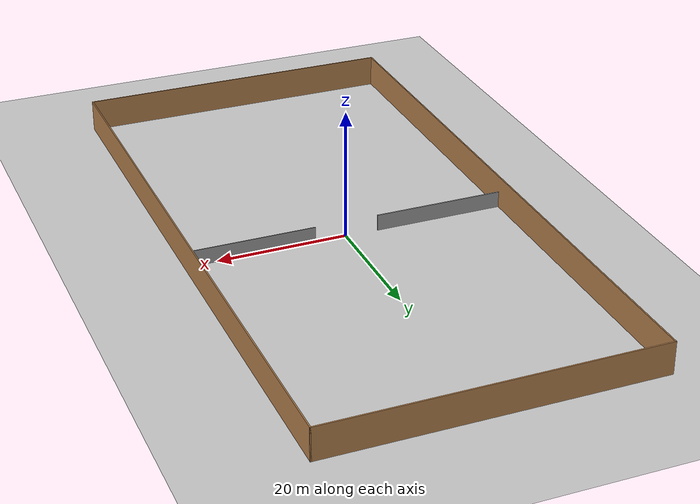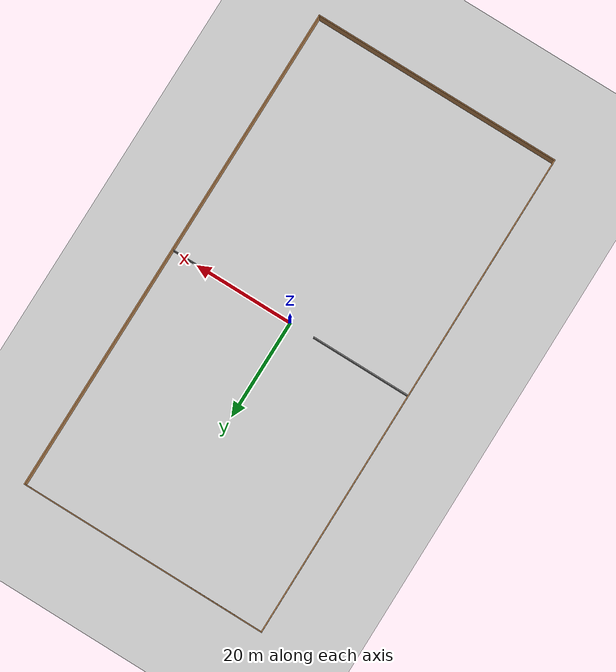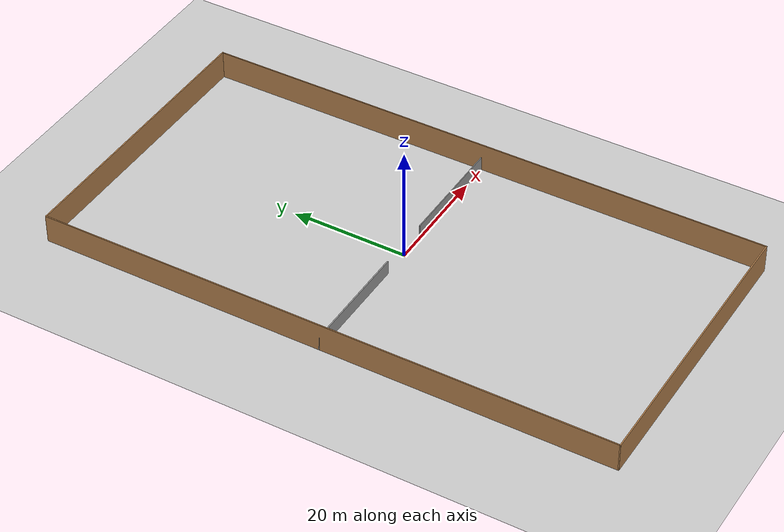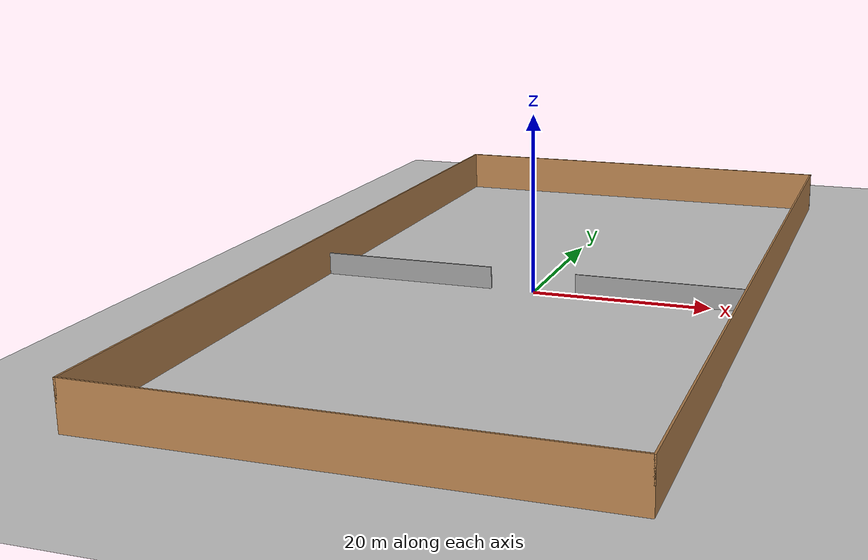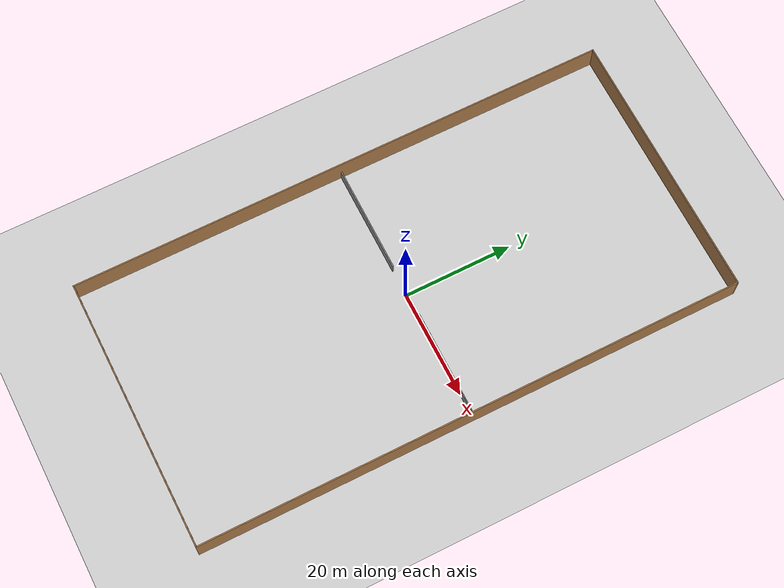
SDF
<sdf version="1.6">
 <world name="default">
  <model name="ground_plane">
   <static>1</static>
   <link name="link">
    <collision name="collision">
     <geometry><plane><normal>0 0 1</normal><size>100 100</size></plane></geometry>
     <surface>
      <contact><collide_bitmask>65535</collide_bitmask></contact>
      <friction><ode><mu>100</mu><mu2>50</mu2></ode></friction>
     </surface>
    </collision>
    <visual name="visual">
     <cast_shadows>0</cast_shadows>
     <geometry><plane><normal>0 0 1</normal><size>100 100</size></plane></geometry>
     <material>
      <script><uri>file://media/materials/scripts/gazebo.material</uri><name>Gazebo/Grey</name></script>
     </material>
    </visual>
   </link>
  </model>
  <model name="walls">
   <link name="Wall_2">
    <pose>0 -50 0 0 -0 0</pose>
    <visual name="Wall_2_Visual">
     <pose>0 0 2.5 0 -0 0</pose>
     <geometry><box><size>50.2 0.2 5</size></box></geometry>
     <material>
      <script><uri>file://media/materials/scripts/gazebo.material</uri><name>Gazebo/Wood</name></script>
      <ambient>1 0.764706 0.305882 1</ambient>
     </material>
     <meta><layer>0</layer></meta>
    </visual>
    <collision name="Wall_2_Collision">
     <pose>0 0 2.5 0 -0 0</pose>
     <geometry><box><size>50.2 0.2 5</size></box></geometry>
     <surface>
      <friction>
       <ode><mu>1</mu><mu2>1</mu2><fdir1>0 0 0</fdir1><slip1>0</slip1><slip2>0</slip2></ode>
       <torsional>
        <coefficient>1</coefficient>
        <patch_radius>0</patch_radius>
        <surface_radius>0</surface_radius>
        <use_patch_radius>1</use_patch_radius>
        <ode><slip>0</slip></ode>
       </torsional>
      </friction>
      <bounce><restitution_coefficient>0</restitution_coefficient><threshold>1e+06</threshold></bounce>
      <contact>
       <collide_without_contact>0</collide_without_contact>
       <collide_without_contact_bitmask>1</collide_without_contact_bitmask>
       <collide_bitmask>1</collide_bitmask>
       <ode>
        <soft_cfm>0</soft_cfm>
        <soft_erp>0.2</soft_erp>
        <kp>1e+13</kp>
        <kd>1</kd>
        <max_vel>0.01</max_vel>
        <min_depth>0</min_depth>
       </ode>
       <bullet>
        <split_impulse>1</split_impulse>
        <split_impulse_penetration_threshold>-0.01</split_impulse_penetration_threshold>
        <soft_cfm>0</soft_cfm>
        <soft_erp>0.2</soft_erp>
        <kp>1e+13</kp>
        <kd>1</kd>
       </bullet>
      </contact>
     </surface>
    </collision>
   </link>
   <link name="Wall_20">
    <pose>25 0 0 0 -0 1.5708</pose>
    <visual name="Wall_20_Visual">
     <pose>0 0 2.5 0 -0 0</pose>
     <geometry><box><size>100.2 0.2 5</size></box></geometry>
     <material>
      <script><uri>file://media/materials/scripts/gazebo.material</uri><name>Gazebo/Wood</name></script>
      <ambient>1 0.764706 0.305882 1</ambient>
     </material>
     <meta><layer>0</layer></meta>
    </visual>
    <collision name="Wall_20_Collision">
     <pose>0 0 2.5 0 -0 0</pose>
     <geometry><box><size>100.2 0.2 5</size></box></geometry>
     <surface>
      <friction>
       <ode><mu>1</mu><mu2>1</mu2><fdir1>0 0 0</fdir1><slip1>0</slip1><slip2>0</slip2></ode>
       <torsional>
        <coefficient>1</coefficient>
        <patch_radius>0</patch_radius>
        <surface_radius>0</surface_radius>
        <use_patch_radius>1</use_patch_radius>
        <ode><slip>0</slip></ode>
       </torsional>
      </friction>
      <bounce><restitution_coefficient>0</restitution_coefficient><threshold>1e+06</threshold></bounce>
      <contact>
       <collide_without_contact>0</collide_without_contact>
       <collide_without_contact_bitmask>1</collide_without_contact_bitmask>
       <collide_bitmask>1</collide_bitmask>
       <ode>
        <soft_cfm>0</soft_cfm>
        <soft_erp>0.2</soft_erp>
        <kp>1e+13</kp>
        <kd>1</kd>
        <max_vel>0.01</max_vel>
        <min_depth>0</min_depth>
       </ode>
       <bullet>
        <split_impulse>1</split_impulse>
        <split_impulse_penetration_threshold>-0.01</split_impulse_penetration_threshold>
        <soft_cfm>0</soft_cfm>
        <soft_erp>0.2</soft_erp>
        <kp>1e+13</kp>
        <kd>1</kd>
       </bullet>
      </contact>
     </surface>
    </collision>
   </link>
   <link name="Wall_22">
    <pose>0 50 0 0 -0 0</pose>
    <visual name="Wall_22_Visual">
     <pose>0 0 2.5 0 -0 0</pose>
     <geometry><box><size>50.2 0.2 5</size></box></geometry>
     <material>
      <script><uri>file://media/materials/scripts/gazebo.material</uri><name>Gazebo/Wood</name></script>
      <ambient>1 0.764706 0.305882 1</ambient>
     </material>
     <meta><layer>0</layer></meta>
    </visual>
    <collision name="Wall_22_Collision">
     <pose>0 0 2.5 0 -0 0</pose>
     <geometry><box><size>50.2 0.2 5</size></box></geometry>
     <surface>
      <friction>
       <ode><mu>1</mu><mu2>1</mu2><fdir1>0 0 0</fdir1><slip1>0</slip1><slip2>0</slip2></ode>
       <torsional>
        <coefficient>1</coefficient>
        <patch_radius>0</patch_radius>
        <surface_radius>0</surface_radius>
        <use_patch_radius>1</use_patch_radius>
        <ode><slip>0</slip></ode>
       </torsional>
      </friction>
      <bounce><restitution_coefficient>0</restitution_coefficient><threshold>1e+06</threshold></bounce>
      <contact>
       <collide_without_contact>0</collide_without_contact>
       <collide_without_contact_bitmask>1</collide_without_contact_bitmask>
       <collide_bitmask>1</collide_bitmask>
       <ode>
        <soft_cfm>0</soft_cfm>
        <soft_erp>0.2</soft_erp>
        <kp>1e+13</kp>
        <kd>1</kd>
        <max_vel>0.01</max_vel>
        <min_depth>0</min_depth>
       </ode>
       <bullet>
        <split_impulse>1</split_impulse>
        <split_impulse_penetration_threshold>-0.01</split_impulse_penetration_threshold>
        <soft_cfm>0</soft_cfm>
        <soft_erp>0.2</soft_erp>
        <kp>1e+13</kp>
        <kd>1</kd>
       </bullet>
      </contact>
     </surface>
    </collision>
   </link>
   <link name="Wall_28">
    <pose>-15 0 0 0 -0 0</pose>
    <visual name="Wall_28_Visual">
     <pose>0 0 1.25 0 -0 0</pose>
     <geometry><box><size>20.2 0.2 2.5</size></box></geometry>
     <material>
      <script><uri>file://media/materials/scripts/gazebo.material</uri><name>Gazebo/Grey</name></script>
      <ambient>1 1 1 1</ambient>
     </material>
     <meta><layer>0</layer></meta>
    </visual>
    <collision name="Wall_28_Collision">
     <pose>0 0 1.25 0 -0 0</pose>
     <geometry><box><size>20.2 0.2 2.5</size></box></geometry>
     <surface>
      <friction>
       <ode><mu>1</mu><mu2>1</mu2><fdir1>0 0 0</fdir1><slip1>0</slip1><slip2>0</slip2></ode>
       <torsional>
        <coefficient>1</coefficient>
        <patch_radius>0</patch_radius>
        <surface_radius>0</surface_radius>
        <use_patch_radius>1</use_patch_radius>
        <ode><slip>0</slip></ode>
       </torsional>
      </friction>
      <bounce><restitution_coefficient>0</restitution_coefficient><threshold>1e+06</threshold></bounce>
      <contact>
       <collide_without_contact>0</collide_without_contact>
       <collide_without_contact_bitmask>1</collide_without_contact_bitmask>
       <collide_bitmask>1</collide_bitmask>
       <ode>
        <soft_cfm>0</soft_cfm>
        <soft_erp>0.2</soft_erp>
        <kp>1e+13</kp>
        <kd>1</kd>
        <max_vel>0.01</max_vel>
        <min_depth>0</min_depth>
       </ode>
       <bullet>
        <split_impulse>1</split_impulse>
        <split_impulse_penetration_threshold>-0.01</split_impulse_penetration_threshold>
        <soft_cfm>0</soft_cfm>
        <soft_erp>0.2</soft_erp>
        <kp>1e+13</kp>
        <kd>1</kd>
       </bullet>
      </contact>
     </surface>
    </collision>
   </link>
   <link name="Wall_30">
    <pose>15 0 0 0 -0 3.14159</pose>
    <visual name="Wall_30_Visual">
     <pose>0 0 1.25 0 -0 0</pose>
     <geometry><box><size>20.15 0.15 2.5</size></box></geometry>
     <material>
      <script><uri>file://media/materials/scripts/gazebo.material</uri><name>Gazebo/Grey</name></script>
      <ambient>1 1 1 1</ambient>
     </material>
     <meta><layer>0</layer></meta>
    </visual>
    <collision name="Wall_30_Collision">
     <pose>0 0 1.25 0 -0 0</pose>
     <geometry><box><size>20.15 0.15 2.5</size></box></geometry>
     <surface>
      <friction>
       <ode><mu>1</mu><mu2>1</mu2><fdir1>0 0 0</fdir1><slip1>0</slip1><slip2>0</slip2></ode>
       <torsional>
        <coefficient>1</coefficient>
        <patch_radius>0</patch_radius>
        <surface_radius>0</surface_radius>
        <use_patch_radius>1</use_patch_radius>
        <ode><slip>0</slip></ode>
       </torsional>
      </friction>
      <bounce><restitution_coefficient>0</restitution_coefficient><threshold>1e+06</threshold></bounce>
      <contact>
       <collide_without_contact>0</collide_without_contact>
       <collide_without_contact_bitmask>1</collide_without_contact_bitmask>
       <collide_bitmask>1</collide_bitmask>
       <ode>
        <soft_cfm>0</soft_cfm>
        <soft_erp>0.2</soft_erp>
        <kp>1e+13</kp>
        <kd>1</kd>
        <max_vel>0.01</max_vel>
        <min_depth>0</min_depth>
       </ode>
       <bullet>
        <split_impulse>1</split_impulse>
        <split_impulse_penetration_threshold>-0.01</split_impulse_penetration_threshold>
        <soft_cfm>0</soft_cfm>
        <soft_erp>0.2</soft_erp>
        <kp>1e+13</kp>
        <kd>1</kd>
       </bullet>
      </contact>
     </surface>
    </collision>
   </link>
   <link name="Wall_4">
    <pose>-25 0 0 0 -0 1.5708</pose>
    <visual name="Wall_4_Visual">
     <pose>0 0 2.5 0 -0 0</pose>
     <geometry><box><size>100.2 0.2 5</size></box></geometry>
     <material>
      <script><uri>file://media/materials/scripts/gazebo.material</uri><name>Gazebo/Wood</name></script>
      <ambient>0.760784 0.662745 0.627451 1</ambient>
     </material>
     <meta><layer>0</layer></meta>
    </visual>
    <collision name="Wall_4_Collision">
     <pose>0 0 2.5 0 -0 0</pose>
     <geometry><box><size>100.2 0.2 5</size></box></geometry>
     <surface>
      <friction>
       <ode><mu>1</mu><mu2>1</mu2><fdir1>0 0 0</fdir1><slip1>0</slip1><slip2>0</slip2></ode>
       <torsional>
        <coefficient>1</coefficient>
        <patch_radius>0</patch_radius>
        <surface_radius>0</surface_radius>
        <use_patch_radius>1</use_patch_radius>
        <ode><slip>0</slip></ode>
       </torsional>
      </friction>
      <bounce><restitution_coefficient>0</restitution_coefficient><threshold>1e+06</threshold></bounce>
      <contact>
       <collide_without_contact>0</collide_without_contact>
       <collide_without_contact_bitmask>1</collide_without_contact_bitmask>
       <collide_bitmask>1</collide_bitmask>
       <ode>
        <soft_cfm>0</soft_cfm>
        <soft_erp>0.2</soft_erp>
        <kp>1e+13</kp>
        <kd>1</kd>
        <max_vel>0.01</max_vel>
        <min_depth>0</min_depth>
       </ode>
       <bullet>
        <split_impulse>1</split_impulse>
        <split_impulse_penetration_threshold>-0.01</split_impulse_penetration_threshold>
        <soft_cfm>0</soft_cfm>
        <soft_erp>0.2</soft_erp>
        <kp>1e+13</kp>
        <kd>1</kd>
       </bullet>
      </contact>
     </surface>
    </collision>
   </link>
   <static>1</static>
   <pose>-0.088039 0.035 0 0 -0 0</pose>
  </model>
 </world>
</sdf>
